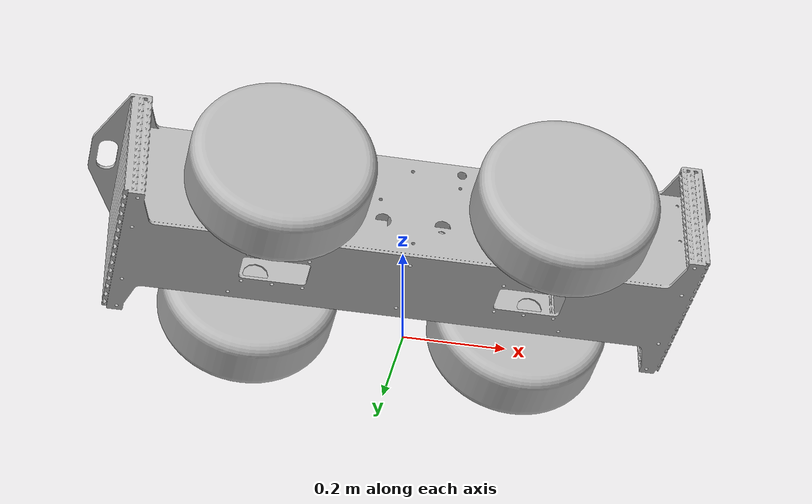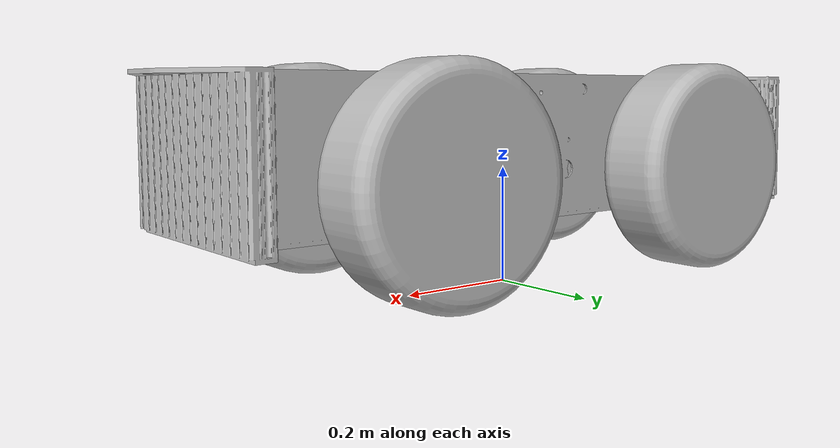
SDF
<sdf version='1.7'>
  <model name='sly'>
    <link name='base_link'>
      <inertial>
        <pose>0.002479 0.004047 0.24906 0 -0 0</pose>
        <mass>30.583</mass>
        <inertia>
          <ixx>0.1451</ixx>
          <ixy>-1.6457e-05</ixy>
          <ixz>0.00010762</ixz>
          <iyy>0.74738</iyy>
          <iyz>-0.00014219</iyz>
          <izz>0.73134</izz>
        </inertia>
      </inertial>
      <collision name='base_link_collision'>
        <pose>0 0 0 0 -0 0</pose>
        <geometry>
          <mesh>
            <scale>1 1 1</scale>
            <uri>model://sly/meshes/base_link.STL</uri>
          </mesh>
        </geometry>
      </collision>
      <visual name='base_link_visual'>
        <pose>0 0 0 0 -0 0</pose>
        <geometry>
          <mesh>
            <scale>1 1 1</scale>
            <uri>model://sly/meshes/base_link.STL</uri>
          </mesh>
        </geometry>
      </visual>
    </link>
    <joint name='wheel_joint_0' type='revolute'>
      <pose relative_to='base_link'>-0.275 0.2 0.20196 -1.5708 0 0</pose>
      <parent>base_link</parent>
      <child>wheel_0</child>
      <axis>
        <xyz>0 0 -1</xyz>
        <limit>
          <lower>-1e+16</lower>
          <upper>1e+16</upper>
        </limit>
        <dynamics>
          <spring_reference>0</spring_reference>
          <spring_stiffness>0</spring_stiffness>
        </dynamics>
      </axis>
    </joint>
    <link name='wheel_0'>
      <pose relative_to='wheel_joint_0'>0 0 0 0 -0 0</pose>
      <inertial>
        <pose>2e-06 -4e-06 0.000139 0 -0 0</pose>
        <mass>3.3992</mass>
        <inertia>
          <ixx>0.058645</ixx>
          <ixy>5.694e-07</ixy>
          <ixz>1.0771e-06</ixz>
          <iyy>0.058645</iyy>
          <iyz>6.6536e-07</iyz>
          <izz>0.098484</izz>
        </inertia>
      </inertial>
      <collision name='wheel_0_collision'>
        <pose>0 0 0 0 -0 0</pose>
        <geometry>
          <mesh>
            <scale>1 1 1</scale>
            <uri>model://sly/meshes/wheel_0.STL</uri>
          </mesh>
        </geometry>
      </collision>
      <visual name='wheel_0_visual'>
        <pose>0 0 0 0 -0 0</pose>
        <geometry>
          <mesh>
            <scale>1 1 1</scale>
            <uri>model://sly/meshes/wheel_0.STL</uri>
          </mesh>
        </geometry>
      </visual>
    </link>
    <joint name='wheel_joint_1' type='revolute'>
      <pose relative_to='base_link'>0.275 0.2 0.20196 -1.5708 0 0</pose>
      <parent>base_link</parent>
      <child>wheel_1</child>
      <axis>
        <xyz>0 0 -1</xyz>
        <limit>
          <lower>-1e+16</lower>
          <upper>1e+16</upper>
        </limit>
        <dynamics>
          <spring_reference>0</spring_reference>
          <spring_stiffness>0</spring_stiffness>
        </dynamics>
      </axis>
    </joint>
    <link name='wheel_1'>
      <pose relative_to='wheel_joint_1'>0 0 0 0 -0 0</pose>
      <inertial>
        <pose>-0.55219 4e-06 -0.39386 0 -0 0</pose>
        <mass>3.3992</mass>
        <inertia>
          <ixx>0.058645</ixx>
          <ixy>-5.694e-07</ixy>
          <ixz>-1.0771e-06</ixz>
          <iyy>0.058645</iyy>
          <iyz>6.6536e-07</iyz>
          <izz>0.098484</izz>
        </inertia>
      </inertial>
      <collision name='wheel_1_collision'>
        <pose>0 0 0 0 -0 0</pose>
        <geometry>
          <mesh>
            <scale>1 1 1</scale>
            <uri>model://sly/meshes/wheel_1.STL</uri>
          </mesh>
        </geometry>
      </collision>
      <visual name='wheel_1_visual'>
        <pose>0 0 0 0 -0 0</pose>
        <geometry>
          <mesh>
            <scale>1 1 1</scale>
            <uri>model://sly/meshes/wheel_1.STL</uri>
          </mesh>
        </geometry>
      </visual>
    </link>
    <joint name='wheel_joint_2' type='revolute'>
      <pose relative_to='base_link'>-0.275 -0.2 0.20196 -1.5708 0 0</pose>
      <parent>base_link</parent>
      <child>wheel_2</child>
      <axis>
        <xyz>0 0 1</xyz>
        <limit>
          <lower>-1e+16</lower>
          <upper>1e+16</upper>
        </limit>
        <dynamics>
          <spring_reference>0</spring_reference>
          <spring_stiffness>0</spring_stiffness>
        </dynamics>
      </axis>
    </joint>
    <link name='wheel_2'>
      <pose relative_to='wheel_joint_2'>0 0 0 0 -0 0</pose>
      <inertial>
        <pose>0.5522 4e-06 0.000861 0 -0 0</pose>
        <mass>3.3992</mass>
        <inertia>
          <ixx>0.058645</ixx>
          <ixy>-5.694e-07</ixy>
          <ixz>-1.0771e-06</ixz>
          <iyy>0.058645</iyy>
          <iyz>6.6536e-07</iyz>
          <izz>0.098484</izz>
        </inertia>
      </inertial>
      <collision name='wheel_2_collision'>
        <pose>0 0 0 0 -0 0</pose>
        <geometry>
          <mesh>
            <scale>1 1 1</scale>
            <uri>model://sly/meshes/wheel_2.STL</uri>
          </mesh>
        </geometry>
      </collision>
      <visual name='wheel_2_visual'>
        <pose>0 0 0 0 -0 0</pose>
        <geometry>
          <mesh>
            <scale>1 1 1</scale>
            <uri>model://sly/meshes/wheel_2.STL</uri>
          </mesh>
        </geometry>
      </visual>
    </link>
    <joint name='wheel_joint_3' type='revolute'>
      <pose relative_to='base_link'>0.275 -0.2 0.20196 -1.5708 0 0</pose>
      <parent>base_link</parent>
      <child>wheel_3</child>
      <axis>
        <xyz>0 0 1</xyz>
        <limit>
          <lower>-1e+16</lower>
          <upper>1e+16</upper>
        </limit>
        <dynamics>
          <spring_reference>0</spring_reference>
          <spring_stiffness>0</spring_stiffness>
        </dynamics>
      </axis>
    </joint>
    <link name='wheel_3'>
      <pose relative_to='wheel_joint_3'>0 0 0 0 -0 0</pose>
      <inertial>
        <pose>2e-06 -4e-06 0.39386 0 -0 0</pose>
        <mass>3.3992</mass>
        <inertia>
          <ixx>0.058645</ixx>
          <ixy>5.694e-07</ixy>
          <ixz>1.0771e-06</ixz>
          <iyy>0.058645</iyy>
          <iyz>6.6536e-07</iyz>
          <izz>0.098484</izz>
        </inertia>
      </inertial>
      <collision name='wheel_3_collision'>
        <pose>0 0 0 0 -0 0</pose>
        <geometry>
          <mesh>
            <scale>1 1 1</scale>
            <uri>model://sly/meshes/wheel_3.STL</uri>
          </mesh>
        </geometry>
      </collision>
      <visual name='wheel_3_visual'>
        <pose>0 0 0 0 -0 0</pose>
        <geometry>
          <mesh>
            <scale>1 1 1</scale>
            <uri>model://sly/meshes/wheel_3.STL</uri>
          </mesh>
        </geometry>
      </visual>
    </link>
  </model>
</sdf>
